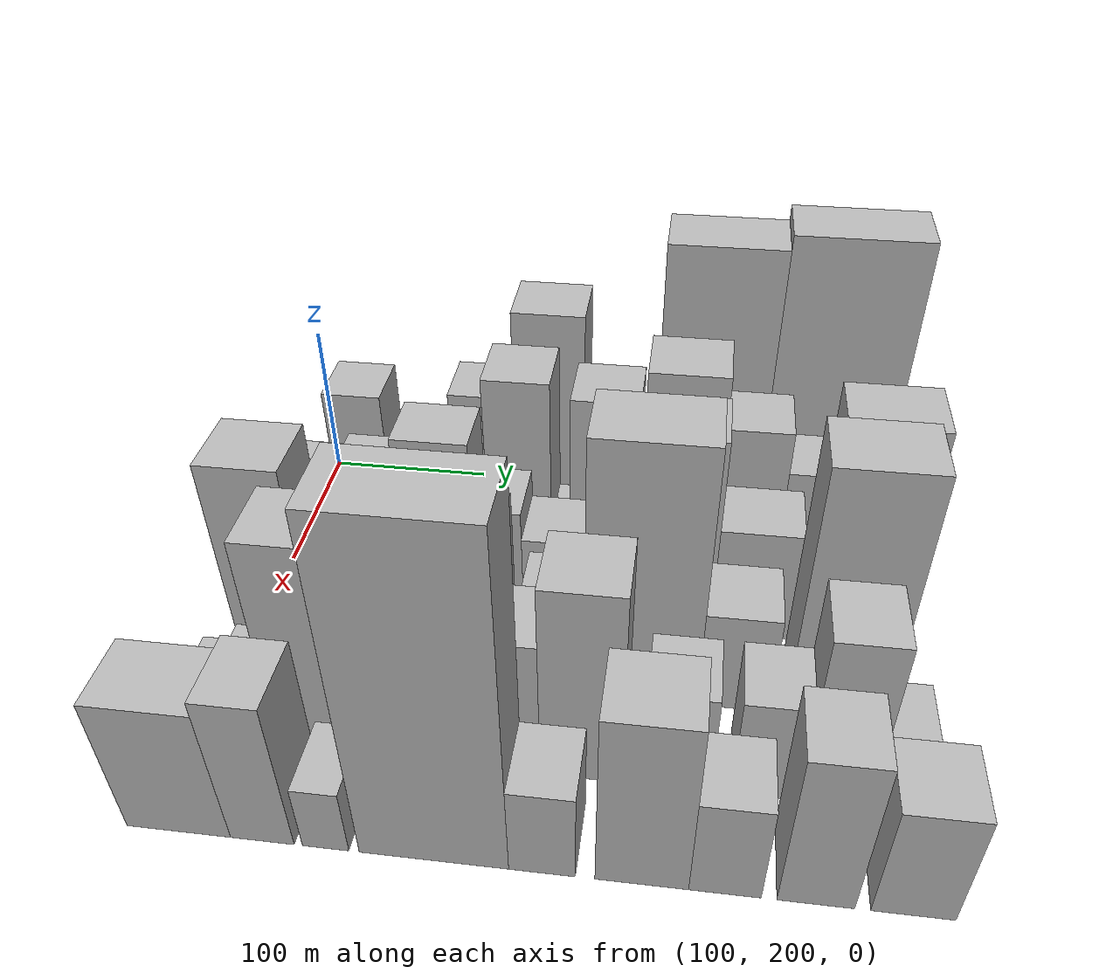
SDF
<sdf version="1.6">
 <world name="default">
  <model name="building_33">
   <static>1</static>
   <pose>100.0000 221.8283 0 0.000000 0.000000 0.000000</pose>
   <link name="link">
    <pose>0 0 34.50 0 0 0</pose>
    <collision name="collision"><geometry><box><size>40.0000 37.4654 69.0000</size></box></geometry></collision>
    <visual name="visual">
     <cast_shadows>0</cast_shadows>
     <geometry><box><size>40.0000 37.4654 69.0000</size></box></geometry>
     <material>
      <script>
       <uri>model://HANNAS_wall/materials/scripts</uri>
       <uri>model://HANNAS_wall/materials/textures</uri>
       <name>vrc/HANNAS_wall</name>
      </script>
     </material>
    </visual>
   </link>
  </model>
  <model name="building_34">
   <static>1</static>
   <pose>100.0000 247.1931 0 0.000000 0.000000 0.000000</pose>
   <link name="link">
    <pose>0 0 13.50 0 0 0</pose>
    <collision name="collision"><geometry><box><size>40.0000 13.2643 27.0000</size></box></geometry></collision>
    <visual name="visual">
     <cast_shadows>0</cast_shadows>
     <geometry><box><size>40.0000 13.2643 27.0000</size></box></geometry>
     <material>
      <script>
       <uri>model://HANNAS_wall/materials/scripts</uri>
       <uri>model://HANNAS_wall/materials/textures</uri>
       <name>vrc/HANNAS_wall</name>
      </script>
     </material>
    </visual>
   </link>
  </model>
  <model name="building_35">
   <static>1</static>
   <pose>100.0000 265.9821 0 0.000000 0.000000 0.000000</pose>
   <link name="link">
    <pose>0 0 7.50 0 0 0</pose>
    <collision name="collision"><geometry><box><size>40.0000 6.3138 15.0000</size></box></geometry></collision>
    <visual name="visual">
     <cast_shadows>0</cast_shadows>
     <geometry><box><size>40.0000 6.3138 15.0000</size></box></geometry>
     <material>
      <script>
       <uri>model://HANNAS_wall/materials/scripts</uri>
       <uri>model://HANNAS_wall/materials/textures</uri>
       <name>vrc/HANNAS_wall</name>
      </script>
     </material>
    </visual>
   </link>
  </model>
  <model name="building_36">
   <static>1</static>
   <pose>100.0000 281.3648 0 0.000000 0.000000 0.000000</pose>
   <link name="link">
    <pose>0 0 7.50 0 0 0</pose>
    <collision name="collision"><geometry><box><size>40.0000 6.4515 15.0000</size></box></geometry></collision>
    <visual name="visual">
     <cast_shadows>0</cast_shadows>
     <geometry><box><size>40.0000 6.4515 15.0000</size></box></geometry>
     <material>
      <script>
       <uri>model://HANNAS_wall/materials/scripts</uri>
       <uri>model://HANNAS_wall/materials/textures</uri>
       <name>vrc/HANNAS_wall</name>
      </script>
     </material>
    </visual>
   </link>
  </model>
  <model name="building_37">
   <static>1</static>
   <pose>100.0000 305.4700 0 0.000000 0.000000 0.000000</pose>
   <link name="link">
    <pose>0 0 37.50 0 0 0</pose>
    <collision name="collision"><geometry><box><size>40.0000 41.7590 75.0000</size></box></geometry></collision>
    <visual name="visual">
     <cast_shadows>0</cast_shadows>
     <geometry><box><size>40.0000 41.7590 75.0000</size></box></geometry>
     <material>
      <script>
       <uri>model://HANNAS_wall/materials/scripts</uri>
       <uri>model://HANNAS_wall/materials/textures</uri>
       <name>vrc/HANNAS_wall</name>
      </script>
     </material>
    </visual>
   </link>
  </model>
  <model name="building_38">
   <static>1</static>
   <pose>100.0000 348.3477 0 0.000000 0.000000 0.000000</pose>
   <link name="link">
    <pose>0 0 67.50 0 0 0</pose>
    <collision name="collision"><geometry><box><size>40.0000 43.9964 135.0000</size></box></geometry></collision>
    <visual name="visual">
     <cast_shadows>0</cast_shadows>
     <geometry><box><size>40.0000 43.9964 135.0000</size></box></geometry>
     <material>
      <script>
       <uri>model://HANNAS_wall/materials/scripts</uri>
       <uri>model://HANNAS_wall/materials/textures</uri>
       <name>vrc/HANNAS_wall</name>
      </script>
     </material>
    </visual>
   </link>
  </model>
  <model name="building_39">
   <static>1</static>
   <pose>100.0000 376.3401 0 0.000000 0.000000 0.000000</pose>
   <link name="link">
    <pose>0 0 13.50 0 0 0</pose>
    <collision name="collision"><geometry><box><size>40.0000 11.9885 27.0000</size></box></geometry></collision>
    <visual name="visual">
     <cast_shadows>0</cast_shadows>
     <geometry><box><size>40.0000 11.9885 27.0000</size></box></geometry>
     <material>
      <script>
       <uri>model://HANNAS_wall/materials/scripts</uri>
       <uri>model://HANNAS_wall/materials/textures</uri>
       <name>vrc/HANNAS_wall</name>
      </script>
     </material>
    </visual>
   </link>
  </model>
  <model name="building_40">
   <static>1</static>
   <pose>100.0000 390.2218 0 0.000000 0.000000 0.000000</pose>
   <link name="link">
    <pose>0 0 15.00 0 0 0</pose>
    <collision name="collision"><geometry><box><size>40.0000 15.7749 30.0000</size></box></geometry></collision>
    <visual name="visual">
     <cast_shadows>0</cast_shadows>
     <geometry><box><size>40.0000 15.7749 30.0000</size></box></geometry>
     <material>
      <script>
       <uri>model://HANNAS_wall/materials/scripts</uri>
       <uri>model://HANNAS_wall/materials/textures</uri>
       <name>vrc/HANNAS_wall</name>
      </script>
     </material>
    </visual>
   </link>
  </model>
  <model name="building_41">
   <static>1</static>
   <pose>100.0000 406.5665 0 0.000000 0.000000 0.000000</pose>
   <link name="link">
    <pose>0 0 15.00 0 0 0</pose>
    <collision name="collision"><geometry><box><size>40.0000 16.9144 30.0000</size></box></geometry></collision>
    <visual name="visual">
     <cast_shadows>0</cast_shadows>
     <geometry><box><size>40.0000 16.9144 30.0000</size></box></geometry>
     <material>
      <script>
       <uri>model://HANNAS_wall/materials/scripts</uri>
       <uri>model://HANNAS_wall/materials/textures</uri>
       <name>vrc/HANNAS_wall</name>
      </script>
     </material>
    </visual>
   </link>
  </model>
  <model name="building_42">
   <static>1</static>
   <pose>100.0000 448.3828 0 0.000000 0.000000 0.000000</pose>
   <link name="link">
    <pose>0 0 91.50 0 0 0</pose>
    <collision name="collision"><geometry><box><size>40.0000 66.7181 183.0000</size></box></geometry></collision>
    <visual name="visual">
     <cast_shadows>0</cast_shadows>
     <geometry><box><size>40.0000 66.7181 183.0000</size></box></geometry>
     <material>
      <script>
       <uri>model://HANNAS_wall/materials/scripts</uri>
       <uri>model://HANNAS_wall/materials/textures</uri>
       <name>vrc/HANNAS_wall</name>
      </script>
     </material>
    </visual>
   </link>
  </model>
  <model name="building_43">
   <static>1</static>
   <pose>100.0000 519.7299 0 0.000000 0.000000 0.000000</pose>
   <link name="link">
    <pose>0 0 96.00 0 0 0</pose>
    <collision name="collision"><geometry><box><size>40.0000 75.9759 192.0000</size></box></geometry></collision>
    <visual name="visual">
     <cast_shadows>0</cast_shadows>
     <geometry><box><size>40.0000 75.9759 192.0000</size></box></geometry>
     <material>
      <script>
       <uri>model://HANNAS_wall/materials/scripts</uri>
       <uri>model://HANNAS_wall/materials/textures</uri>
       <name>vrc/HANNAS_wall</name>
      </script>
     </material>
    </visual>
   </link>
  </model>
  <model name="building_44">
   <static>1</static>
   <pose>100.0000 560.9932 0 0.000000 0.000000 0.000000</pose>
   <link name="link">
    <pose>0 0 7.50 0 0 0</pose>
    <collision name="collision"><geometry><box><size>40.0000 6.5508 15.0000</size></box></geometry></collision>
    <visual name="visual">
     <cast_shadows>0</cast_shadows>
     <geometry><box><size>40.0000 6.5508 15.0000</size></box></geometry>
     <material>
      <script>
       <uri>model://HANNAS_wall/materials/scripts</uri>
       <uri>model://HANNAS_wall/materials/textures</uri>
       <name>vrc/HANNAS_wall</name>
      </script>
     </material>
    </visual>
   </link>
  </model>
  <model name="building_82">
   <static>1</static>
   <pose>155.0000 214.4098 0 0.000000 0.000000 0.000000</pose>
   <link name="link">
    <pose>0 0 16.50 0 0 0</pose>
    <collision name="collision"><geometry><box><size>40.0000 17.7520 33.0000</size></box></geometry></collision>
    <visual name="visual">
     <cast_shadows>0</cast_shadows>
     <geometry><box><size>40.0000 17.7520 33.0000</size></box></geometry>
     <material>
      <script>
       <uri>model://HANNAS_wall/materials/scripts</uri>
       <uri>model://HANNAS_wall/materials/textures</uri>
       <name>vrc/HANNAS_wall</name>
      </script>
     </material>
    </visual>
   </link>
  </model>
  <model name="building_83">
   <static>1</static>
   <pose>155.0000 237.5512 0 0.000000 0.000000 0.000000</pose>
   <link name="link">
    <pose>0 0 25.50 0 0 0</pose>
    <collision name="collision"><geometry><box><size>40.0000 28.5307 51.0000</size></box></geometry></collision>
    <visual name="visual">
     <cast_shadows>0</cast_shadows>
     <geometry><box><size>40.0000 28.5307 51.0000</size></box></geometry>
     <material>
      <script>
       <uri>model://HANNAS_wall/materials/scripts</uri>
       <uri>model://HANNAS_wall/materials/textures</uri>
       <name>vrc/HANNAS_wall</name>
      </script>
     </material>
    </visual>
   </link>
  </model>
  <model name="building_84">
   <static>1</static>
   <pose>155.0000 285.0950 0 0.000000 0.000000 0.000000</pose>
   <link name="link">
    <pose>0 0 39.00 0 0 0</pose>
    <collision name="collision"><geometry><box><size>40.0000 46.5569 78.0000</size></box></geometry></collision>
    <visual name="visual">
     <cast_shadows>0</cast_shadows>
     <geometry><box><size>40.0000 46.5569 78.0000</size></box></geometry>
     <material>
      <script>
       <uri>model://HANNAS_wall/materials/scripts</uri>
       <uri>model://HANNAS_wall/materials/textures</uri>
       <name>vrc/HANNAS_wall</name>
      </script>
     </material>
    </visual>
   </link>
  </model>
  <model name="building_85">
   <static>1</static>
   <pose>155.0000 337.7202 0 0.000000 0.000000 0.000000</pose>
   <link name="link">
    <pose>0 0 61.50 0 0 0</pose>
    <collision name="collision"><geometry><box><size>40.0000 38.6936 123.0000</size></box></geometry></collision>
    <visual name="visual">
     <cast_shadows>0</cast_shadows>
     <geometry><box><size>40.0000 38.6936 123.0000</size></box></geometry>
     <material>
      <script>
       <uri>model://HANNAS_wall/materials/scripts</uri>
       <uri>model://HANNAS_wall/materials/textures</uri>
       <name>vrc/HANNAS_wall</name>
      </script>
     </material>
    </visual>
   </link>
  </model>
  <model name="building_86">
   <static>1</static>
   <pose>155.0000 362.7837 0 0.000000 0.000000 0.000000</pose>
   <link name="link">
    <pose>0 0 12.00 0 0 0</pose>
    <collision name="collision"><geometry><box><size>40.0000 11.4334 24.0000</size></box></geometry></collision>
    <visual name="visual">
     <cast_shadows>0</cast_shadows>
     <geometry><box><size>40.0000 11.4334 24.0000</size></box></geometry>
     <material>
      <script>
       <uri>model://HANNAS_wall/materials/scripts</uri>
       <uri>model://HANNAS_wall/materials/textures</uri>
       <name>vrc/HANNAS_wall</name>
      </script>
     </material>
    </visual>
   </link>
  </model>
  <model name="building_87">
   <static>1</static>
   <pose>155.0000 388.0872 0 0.000000 0.000000 0.000000</pose>
   <link name="link">
    <pose>0 0 57.00 0 0 0</pose>
    <collision name="collision"><geometry><box><size>40.0000 39.1735 114.0000</size></box></geometry></collision>
    <visual name="visual">
     <cast_shadows>0</cast_shadows>
     <geometry><box><size>40.0000 39.1735 114.0000</size></box></geometry>
     <material>
      <script>
       <uri>model://HANNAS_wall/materials/scripts</uri>
       <uri>model://HANNAS_wall/materials/textures</uri>
       <name>vrc/HANNAS_wall</name>
      </script>
     </material>
    </visual>
   </link>
  </model>
  <model name="building_88">
   <static>1</static>
   <pose>155.0000 433.1110 0 0.000000 0.000000 0.000000</pose>
   <link name="link">
    <pose>0 0 67.50 0 0 0</pose>
    <collision name="collision"><geometry><box><size>40.0000 44.8740 135.0000</size></box></geometry></collision>
    <visual name="visual">
     <cast_shadows>0</cast_shadows>
     <geometry><box><size>40.0000 44.8740 135.0000</size></box></geometry>
     <material>
      <script>
       <uri>model://HANNAS_wall/materials/scripts</uri>
       <uri>model://HANNAS_wall/materials/textures</uri>
       <name>vrc/HANNAS_wall</name>
      </script>
     </material>
    </visual>
   </link>
  </model>
  <model name="building_89">
   <static>1</static>
   <pose>155.0000 474.1898 0 0.000000 0.000000 0.000000</pose>
   <link name="link">
    <pose>0 0 51.00 0 0 0</pose>
    <collision name="collision"><geometry><box><size>40.0000 37.2837 102.0000</size></box></geometry></collision>
    <visual name="visual">
     <cast_shadows>0</cast_shadows>
     <geometry><box><size>40.0000 37.2837 102.0000</size></box></geometry>
     <material>
      <script>
       <uri>model://HANNAS_wall/materials/scripts</uri>
       <uri>model://HANNAS_wall/materials/textures</uri>
       <name>vrc/HANNAS_wall</name>
      </script>
     </material>
    </visual>
   </link>
  </model>
  <model name="building_90">
   <static>1</static>
   <pose>155.0000 512.9101 0 0.000000 0.000000 0.000000</pose>
   <link name="link">
    <pose>0 0 37.50 0 0 0</pose>
    <collision name="collision"><geometry><box><size>40.0000 40.1569 75.0000</size></box></geometry></collision>
    <visual name="visual">
     <cast_shadows>0</cast_shadows>
     <geometry><box><size>40.0000 40.1569 75.0000</size></box></geometry>
     <material>
      <script>
       <uri>model://HANNAS_wall/materials/scripts</uri>
       <uri>model://HANNAS_wall/materials/textures</uri>
       <name>vrc/HANNAS_wall</name>
      </script>
     </material>
    </visual>
   </link>
  </model>
  <model name="building_91">
   <static>1</static>
   <pose>155.0000 550.0552 0 0.000000 0.000000 0.000000</pose>
   <link name="link">
    <pose>0 0 15.00 0 0 0</pose>
    <collision name="collision"><geometry><box><size>40.0000 16.1334 30.0000</size></box></geometry></collision>
    <visual name="visual">
     <cast_shadows>0</cast_shadows>
     <geometry><box><size>40.0000 16.1334 30.0000</size></box></geometry>
     <material>
      <script>
       <uri>model://HANNAS_wall/materials/scripts</uri>
       <uri>model://HANNAS_wall/materials/textures</uri>
       <name>vrc/HANNAS_wall</name>
      </script>
     </material>
    </visual>
   </link>
  </model>
  <model name="building_92">
   <static>1</static>
   <pose>155.0000 567.1289 0 0.000000 0.000000 0.000000</pose>
   <link name="link">
    <pose>0 0 16.50 0 0 0</pose>
    <collision name="collision"><geometry><box><size>40.0000 18.0139 33.0000</size></box></geometry></collision>
    <visual name="visual">
     <cast_shadows>0</cast_shadows>
     <geometry><box><size>40.0000 18.0139 33.0000</size></box></geometry>
     <material>
      <script>
       <uri>model://HANNAS_wall/materials/scripts</uri>
       <uri>model://HANNAS_wall/materials/textures</uri>
       <name>vrc/HANNAS_wall</name>
      </script>
     </material>
    </visual>
   </link>
  </model>
  <model name="building_135">
   <static>1</static>
   <pose>210.0000 219.2897 0 0.000000 0.000000 0.000000</pose>
   <link name="link">
    <pose>0 0 42.00 0 0 0</pose>
    <collision name="collision"><geometry><box><size>40.0000 43.0519 84.0000</size></box></geometry></collision>
    <visual name="visual">
     <cast_shadows>0</cast_shadows>
     <geometry><box><size>40.0000 43.0519 84.0000</size></box></geometry>
     <material>
      <script>
       <uri>model://HANNAS_wall/materials/scripts</uri>
       <uri>model://HANNAS_wall/materials/textures</uri>
       <name>vrc/HANNAS_wall</name>
      </script>
     </material>
    </visual>
   </link>
  </model>
  <model name="building_136">
   <static>1</static>
   <pose>210.0000 263.9357 0 0.000000 0.000000 0.000000</pose>
   <link name="link">
    <pose>0 0 34.50 0 0 0</pose>
    <collision name="collision"><geometry><box><size>40.0000 38.2401 69.0000</size></box></geometry></collision>
    <visual name="visual">
     <cast_shadows>0</cast_shadows>
     <geometry><box><size>40.0000 38.2401 69.0000</size></box></geometry>
     <material>
      <script>
       <uri>model://HANNAS_wall/materials/scripts</uri>
       <uri>model://HANNAS_wall/materials/textures</uri>
       <name>vrc/HANNAS_wall</name>
      </script>
     </material>
    </visual>
   </link>
  </model>
  <model name="building_137">
   <static>1</static>
   <pose>210.0000 286.6817 0 0.000000 0.000000 0.000000</pose>
   <link name="link">
    <pose>0 0 7.50 0 0 0</pose>
    <collision name="collision"><geometry><box><size>40.0000 7.2519 15.0000</size></box></geometry></collision>
    <visual name="visual">
     <cast_shadows>0</cast_shadows>
     <geometry><box><size>40.0000 7.2519 15.0000</size></box></geometry>
     <material>
      <script>
       <uri>model://HANNAS_wall/materials/scripts</uri>
       <uri>model://HANNAS_wall/materials/textures</uri>
       <name>vrc/HANNAS_wall</name>
      </script>
     </material>
    </visual>
   </link>
  </model>
  <model name="building_138">
   <static>1</static>
   <pose>210.0000 294.2300 0 0.000000 0.000000 0.000000</pose>
   <link name="link">
    <pose>0 0 9.00 0 0 0</pose>
    <collision name="collision"><geometry><box><size>40.0000 7.8448 18.0000</size></box></geometry></collision>
    <visual name="visual">
     <cast_shadows>0</cast_shadows>
     <geometry><box><size>40.0000 7.8448 18.0000</size></box></geometry>
     <material>
      <script>
       <uri>model://HANNAS_wall/materials/scripts</uri>
       <uri>model://HANNAS_wall/materials/textures</uri>
       <name>vrc/HANNAS_wall</name>
      </script>
     </material>
    </visual>
   </link>
  </model>
  <model name="building_139">
   <static>1</static>
   <pose>210.0000 303.7725 0 0.000000 0.000000 0.000000</pose>
   <link name="link">
    <pose>0 0 13.50 0 0 0</pose>
    <collision name="collision"><geometry><box><size>40.0000 11.2402 27.0000</size></box></geometry></collision>
    <visual name="visual">
     <cast_shadows>0</cast_shadows>
     <geometry><box><size>40.0000 11.2402 27.0000</size></box></geometry>
     <material>
      <script>
       <uri>model://HANNAS_wall/materials/scripts</uri>
       <uri>model://HANNAS_wall/materials/textures</uri>
       <name>vrc/HANNAS_wall</name>
      </script>
     </material>
    </visual>
   </link>
  </model>
  <model name="building_140">
   <static>1</static>
   <pose>210.0000 328.9687 0 0.000000 0.000000 0.000000</pose>
   <link name="link">
    <pose>0 0 37.50 0 0 0</pose>
    <collision name="collision"><geometry><box><size>40.0000 39.1522 75.0000</size></box></geometry></collision>
    <visual name="visual">
     <cast_shadows>0</cast_shadows>
     <geometry><box><size>40.0000 39.1522 75.0000</size></box></geometry>
     <material>
      <script>
       <uri>model://HANNAS_wall/materials/scripts</uri>
       <uri>model://HANNAS_wall/materials/textures</uri>
       <name>vrc/HANNAS_wall</name>
      </script>
     </material>
    </visual>
   </link>
  </model>
  <model name="building_141">
   <static>1</static>
   <pose>210.0000 365.5946 0 0.000000 0.000000 0.000000</pose>
   <link name="link">
    <pose>0 0 28.50 0 0 0</pose>
    <collision name="collision"><geometry><box><size>40.0000 34.0996 57.0000</size></box></geometry></collision>
    <visual name="visual">
     <cast_shadows>0</cast_shadows>
     <geometry><box><size>40.0000 34.0996 57.0000</size></box></geometry>
     <material>
      <script>
       <uri>model://HANNAS_wall/materials/scripts</uri>
       <uri>model://HANNAS_wall/materials/textures</uri>
       <name>vrc/HANNAS_wall</name>
      </script>
     </material>
    </visual>
   </link>
  </model>
  <model name="building_142">
   <static>1</static>
   <pose>210.0000 394.0105 0 0.000000 0.000000 0.000000</pose>
   <link name="link">
    <pose>0 0 19.50 0 0 0</pose>
    <collision name="collision"><geometry><box><size>40.0000 22.7321 39.0000</size></box></geometry></collision>
    <visual name="visual">
     <cast_shadows>0</cast_shadows>
     <geometry><box><size>40.0000 22.7321 39.0000</size></box></geometry>
     <material>
      <script>
       <uri>model://HANNAS_wall/materials/scripts</uri>
       <uri>model://HANNAS_wall/materials/textures</uri>
       <name>vrc/HANNAS_wall</name>
      </script>
     </material>
    </visual>
   </link>
  </model>
  <model name="building_143">
   <static>1</static>
   <pose>210.0000 430.5073 0 0.000000 0.000000 0.000000</pose>
   <link name="link">
    <pose>0 0 66.00 0 0 0</pose>
    <collision name="collision"><geometry><box><size>40.0000 50.2616 132.0000</size></box></geometry></collision>
    <visual name="visual">
     <cast_shadows>0</cast_shadows>
     <geometry><box><size>40.0000 50.2616 132.0000</size></box></geometry>
     <material>
      <script>
       <uri>model://HANNAS_wall/materials/scripts</uri>
       <uri>model://HANNAS_wall/materials/textures</uri>
       <name>vrc/HANNAS_wall</name>
      </script>
     </material>
    </visual>
   </link>
  </model>
  <model name="building_144">
   <static>1</static>
   <pose>210.0000 477.9719 0 0.000000 0.000000 0.000000</pose>
   <link name="link">
    <pose>0 0 37.50 0 0 0</pose>
    <collision name="collision"><geometry><box><size>40.0000 44.6677 75.0000</size></box></geometry></collision>
    <visual name="visual">
     <cast_shadows>0</cast_shadows>
     <geometry><box><size>40.0000 44.6677 75.0000</size></box></geometry>
     <material>
      <script>
       <uri>model://HANNAS_wall/materials/scripts</uri>
       <uri>model://HANNAS_wall/materials/textures</uri>
       <name>vrc/HANNAS_wall</name>
      </script>
     </material>
    </visual>
   </link>
  </model>
  <model name="building_145">
   <static>1</static>
   <pose>210.0000 535.1512 0 0.000000 0.000000 0.000000</pose>
   <link name="link">
    <pose>0 0 73.50 0 0 0</pose>
    <collision name="collision"><geometry><box><size>40.0000 49.6908 147.0000</size></box></geometry></collision>
    <visual name="visual">
     <cast_shadows>0</cast_shadows>
     <geometry><box><size>40.0000 49.6908 147.0000</size></box></geometry>
     <material>
      <script>
       <uri>model://HANNAS_wall/materials/scripts</uri>
       <uri>model://HANNAS_wall/materials/textures</uri>
       <name>vrc/HANNAS_wall</name>
      </script>
     </material>
    </visual>
   </link>
  </model>
  <model name="building_187">
   <static>1</static>
   <pose>265.0000 221.6848 0 0.000000 0.000000 0.000000</pose>
   <link name="link">
    <pose>0 0 67.50 0 0 0</pose>
    <collision name="collision"><geometry><box><size>40.0000 42.2566 135.0000</size></box></geometry></collision>
    <visual name="visual">
     <cast_shadows>0</cast_shadows>
     <geometry><box><size>40.0000 42.2566 135.0000</size></box></geometry>
     <material>
      <script>
       <uri>model://HANNAS_wall/materials/scripts</uri>
       <uri>model://HANNAS_wall/materials/textures</uri>
       <name>vrc/HANNAS_wall</name>
      </script>
     </material>
    </visual>
   </link>
  </model>
  <model name="building_188">
   <static>1</static>
   <pose>265.0000 260.2987 0 0.000000 0.000000 0.000000</pose>
   <link name="link">
    <pose>0 0 34.50 0 0 0</pose>
    <collision name="collision"><geometry><box><size>40.0000 34.9712 69.0000</size></box></geometry></collision>
    <visual name="visual">
     <cast_shadows>0</cast_shadows>
     <geometry><box><size>40.0000 34.9712 69.0000</size></box></geometry>
     <material>
      <script>
       <uri>model://HANNAS_wall/materials/scripts</uri>
       <uri>model://HANNAS_wall/materials/textures</uri>
       <name>vrc/HANNAS_wall</name>
      </script>
     </material>
    </visual>
   </link>
  </model>
  <model name="building_189">
   <static>1</static>
   <pose>265.0000 295.3701 0 0.000000 0.000000 0.000000</pose>
   <link name="link">
    <pose>0 0 48.00 0 0 0</pose>
    <collision name="collision"><geometry><box><size>40.0000 35.1716 96.0000</size></box></geometry></collision>
    <visual name="visual">
     <cast_shadows>0</cast_shadows>
     <geometry><box><size>40.0000 35.1716 96.0000</size></box></geometry>
     <material>
      <script>
       <uri>model://HANNAS_wall/materials/scripts</uri>
       <uri>model://HANNAS_wall/materials/textures</uri>
       <name>vrc/HANNAS_wall</name>
      </script>
     </material>
    </visual>
   </link>
  </model>
  <model name="building_190">
   <static>1</static>
   <pose>265.0000 329.8560 0 0.000000 0.000000 0.000000</pose>
   <link name="link">
    <pose>0 0 51.00 0 0 0</pose>
    <collision name="collision"><geometry><box><size>40.0000 33.8002 102.0000</size></box></geometry></collision>
    <visual name="visual">
     <cast_shadows>0</cast_shadows>
     <geometry><box><size>40.0000 33.8002 102.0000</size></box></geometry>
     <material>
      <script>
       <uri>model://HANNAS_wall/materials/scripts</uri>
       <uri>model://HANNAS_wall/materials/textures</uri>
       <name>vrc/HANNAS_wall</name>
      </script>
     </material>
    </visual>
   </link>
  </model>
  <model name="building_191">
   <static>1</static>
   <pose>265.0000 372.7354 0 0.000000 0.000000 0.000000</pose>
   <link name="link">
    <pose>0 0 31.50 0 0 0</pose>
    <collision name="collision"><geometry><box><size>40.0000 33.9587 63.0000</size></box></geometry></collision>
    <visual name="visual">
     <cast_shadows>0</cast_shadows>
     <geometry><box><size>40.0000 33.9587 63.0000</size></box></geometry>
     <material>
      <script>
       <uri>model://HANNAS_wall/materials/scripts</uri>
       <uri>model://HANNAS_wall/materials/textures</uri>
       <name>vrc/HANNAS_wall</name>
      </script>
     </material>
    </visual>
   </link>
  </model>
  <model name="building_192">
   <static>1</static>
   <pose>265.0000 420.0521 0 0.000000 0.000000 0.000000</pose>
   <link name="link">
    <pose>0 0 84.00 0 0 0</pose>
    <collision name="collision"><geometry><box><size>40.0000 60.6746 168.0000</size></box></geometry></collision>
    <visual name="visual">
     <cast_shadows>0</cast_shadows>
     <geometry><box><size>40.0000 60.6746 168.0000</size></box></geometry>
     <material>
      <script>
       <uri>model://HANNAS_wall/materials/scripts</uri>
       <uri>model://HANNAS_wall/materials/textures</uri>
       <name>vrc/HANNAS_wall</name>
      </script>
     </material>
    </visual>
   </link>
  </model>
  <model name="building_193">
   <static>1</static>
   <pose>265.0000 469.5610 0 0.000000 0.000000 0.000000</pose>
   <link name="link">
    <pose>0 0 33.00 0 0 0</pose>
    <collision name="collision"><geometry><box><size>40.0000 38.3431 66.0000</size></box></geometry></collision>
    <visual name="visual">
     <cast_shadows>0</cast_shadows>
     <geometry><box><size>40.0000 38.3431 66.0000</size></box></geometry>
     <material>
      <script>
       <uri>model://HANNAS_wall/materials/scripts</uri>
       <uri>model://HANNAS_wall/materials/textures</uri>
       <name>vrc/HANNAS_wall</name>
      </script>
     </material>
    </visual>
   </link>
  </model>
  <model name="building_194">
   <static>1</static>
   <pose>265.0000 522.7734 0 0.000000 0.000000 0.000000</pose>
   <link name="link">
    <pose>0 0 81.00 0 0 0</pose>
    <collision name="collision"><geometry><box><size>40.0000 52.0817 162.0000</size></box></geometry></collision>
    <visual name="visual">
     <cast_shadows>0</cast_shadows>
     <geometry><box><size>40.0000 52.0817 162.0000</size></box></geometry>
     <material>
      <script>
       <uri>model://HANNAS_wall/materials/scripts</uri>
       <uri>model://HANNAS_wall/materials/textures</uri>
       <name>vrc/HANNAS_wall</name>
      </script>
     </material>
    </visual>
   </link>
  </model>
  <model name="building_239">
   <static>1</static>
   <pose>320.0000 199.0475 0 0.000000 0.000000 0.000000</pose>
   <link name="link">
    <pose>0 0 16.50 0 0 0</pose>
    <collision name="collision"><geometry><box><size>40.0000 17.5816 33.0000</size></box></geometry></collision>
    <visual name="visual">
     <cast_shadows>0</cast_shadows>
     <geometry><box><size>40.0000 17.5816 33.0000</size></box></geometry>
     <material>
      <script>
       <uri>model://HANNAS_wall/materials/scripts</uri>
       <uri>model://HANNAS_wall/materials/textures</uri>
       <name>vrc/HANNAS_wall</name>
      </script>
     </material>
    </visual>
   </link>
  </model>
  <model name="building_240">
   <static>1</static>
   <pose>320.0000 222.5209 0 0.000000 0.000000 0.000000</pose>
   <link name="link">
    <pose>0 0 22.50 0 0 0</pose>
    <collision name="collision"><geometry><box><size>40.0000 23.3652 45.0000</size></box></geometry></collision>
    <visual name="visual">
     <cast_shadows>0</cast_shadows>
     <geometry><box><size>40.0000 23.3652 45.0000</size></box></geometry>
     <material>
      <script>
       <uri>model://HANNAS_wall/materials/scripts</uri>
       <uri>model://HANNAS_wall/materials/textures</uri>
       <name>vrc/HANNAS_wall</name>
      </script>
     </material>
    </visual>
   </link>
  </model>
  <model name="building_241">
   <static>1</static>
   <pose>320.0000 264.5369 0 0.000000 0.000000 0.000000</pose>
   <link name="link">
    <pose>0 0 69.00 0 0 0</pose>
    <collision name="collision"><geometry><box><size>40.0000 50.6669 138.0000</size></box></geometry></collision>
    <visual name="visual">
     <cast_shadows>0</cast_shadows>
     <geometry><box><size>40.0000 50.6669 138.0000</size></box></geometry>
     <material>
      <script>
       <uri>model://HANNAS_wall/materials/scripts</uri>
       <uri>model://HANNAS_wall/materials/textures</uri>
       <name>vrc/HANNAS_wall</name>
      </script>
     </material>
    </visual>
   </link>
  </model>
  <model name="building_242">
   <static>1</static>
   <pose>320.0000 306.5579 0 0.000000 0.000000 0.000000</pose>
   <link name="link">
    <pose>0 0 28.50 0 0 0</pose>
    <collision name="collision"><geometry><box><size>40.0000 33.3750 57.0000</size></box></geometry></collision>
    <visual name="visual">
     <cast_shadows>0</cast_shadows>
     <geometry><box><size>40.0000 33.3750 57.0000</size></box></geometry>
     <material>
      <script>
       <uri>model://HANNAS_wall/materials/scripts</uri>
       <uri>model://HANNAS_wall/materials/textures</uri>
       <name>vrc/HANNAS_wall</name>
      </script>
     </material>
    </visual>
   </link>
  </model>
  <model name="building_243">
   <static>1</static>
   <pose>320.0000 348.8252 0 0.000000 0.000000 0.000000</pose>
   <link name="link">
    <pose>0 0 45.00 0 0 0</pose>
    <collision name="collision"><geometry><box><size>40.0000 51.1597 90.0000</size></box></geometry></collision>
    <visual name="visual">
     <cast_shadows>0</cast_shadows>
     <geometry><box><size>40.0000 51.1597 90.0000</size></box></geometry>
     <material>
      <script>
       <uri>model://HANNAS_wall/materials/scripts</uri>
       <uri>model://HANNAS_wall/materials/textures</uri>
       <name>vrc/HANNAS_wall</name>
      </script>
     </material>
    </visual>
   </link>
  </model>
  <model name="building_244">
   <static>1</static>
   <pose>320.0000 394.7625 0 0.000000 0.000000 0.000000</pose>
   <link name="link">
    <pose>0 0 63.00 0 0 0</pose>
    <collision name="collision"><geometry><box><size>40.0000 40.7149 126.0000</size></box></geometry></collision>
    <visual name="visual">
     <cast_shadows>0</cast_shadows>
     <geometry><box><size>40.0000 40.7149 126.0000</size></box></geometry>
     <material>
      <script>
       <uri>model://HANNAS_wall/materials/scripts</uri>
       <uri>model://HANNAS_wall/materials/textures</uri>
       <name>vrc/HANNAS_wall</name>
      </script>
     </material>
    </visual>
   </link>
  </model>
  <model name="building_245">
   <static>1</static>
   <pose>320.0000 442.0963 0 0.000000 0.000000 0.000000</pose>
   <link name="link">
    <pose>0 0 33.00 0 0 0</pose>
    <collision name="collision"><geometry><box><size>40.0000 33.9526 66.0000</size></box></geometry></collision>
    <visual name="visual">
     <cast_shadows>0</cast_shadows>
     <geometry><box><size>40.0000 33.9526 66.0000</size></box></geometry>
     <material>
      <script>
       <uri>model://HANNAS_wall/materials/scripts</uri>
       <uri>model://HANNAS_wall/materials/textures</uri>
       <name>vrc/HANNAS_wall</name>
      </script>
     </material>
    </visual>
   </link>
  </model>
  <model name="building_246">
   <static>1</static>
   <pose>320.0000 485.5752 0 0.000000 0.000000 0.000000</pose>
   <link name="link">
    <pose>0 0 33.00 0 0 0</pose>
    <collision name="collision"><geometry><box><size>40.0000 33.0053 66.0000</size></box></geometry></collision>
    <visual name="visual">
     <cast_shadows>0</cast_shadows>
     <geometry><box><size>40.0000 33.0053 66.0000</size></box></geometry>
     <material>
      <script>
       <uri>model://HANNAS_wall/materials/scripts</uri>
       <uri>model://HANNAS_wall/materials/textures</uri>
       <name>vrc/HANNAS_wall</name>
      </script>
     </material>
    </visual>
   </link>
  </model>
  <model name="building_247">
   <static>1</static>
   <pose>320.0000 519.1788 0 0.000000 0.000000 0.000000</pose>
   <link name="link">
    <pose>0 0 55.50 0 0 0</pose>
    <collision name="collision"><geometry><box><size>40.0000 34.2018 111.0000</size></box></geometry></collision>
    <visual name="visual">
     <cast_shadows>0</cast_shadows>
     <geometry><box><size>40.0000 34.2018 111.0000</size></box></geometry>
     <material>
      <script>
       <uri>model://HANNAS_wall/materials/scripts</uri>
       <uri>model://HANNAS_wall/materials/textures</uri>
       <name>vrc/HANNAS_wall</name>
      </script>
     </material>
    </visual>
   </link>
  </model>
  <model name="building_248">
   <static>1</static>
   <pose>320.0000 548.7589 0 0.000000 0.000000 0.000000</pose>
   <link name="link">
    <pose>0 0 24.00 0 0 0</pose>
    <collision name="collision"><geometry><box><size>40.0000 24.9583 48.0000</size></box></geometry></collision>
    <visual name="visual">
     <cast_shadows>0</cast_shadows>
     <geometry><box><size>40.0000 24.9583 48.0000</size></box></geometry>
     <material>
      <script>
       <uri>model://HANNAS_wall/materials/scripts</uri>
       <uri>model://HANNAS_wall/materials/textures</uri>
       <name>vrc/HANNAS_wall</name>
      </script>
     </material>
    </visual>
   </link>
  </model>
  <model name="building_287">
   <static>1</static>
   <pose>375.0000 208.6293 0 0.000000 0.000000 0.000000</pose>
   <link name="link">
    <pose>0 0 43.50 0 0 0</pose>
    <collision name="collision"><geometry><box><size>40.0000 51.5894 87.0000</size></box></geometry></collision>
    <visual name="visual">
     <cast_shadows>0</cast_shadows>
     <geometry><box><size>40.0000 51.5894 87.0000</size></box></geometry>
     <material>
      <script>
       <uri>model://HANNAS_wall/materials/scripts</uri>
       <uri>model://HANNAS_wall/materials/textures</uri>
       <name>vrc/HANNAS_wall</name>
      </script>
     </material>
    </visual>
   </link>
  </model>
  <model name="building_288">
   <static>1</static>
   <pose>375.0000 250.0112 0 0.000000 0.000000 0.000000</pose>
   <link name="link">
    <pose>0 0 48.00 0 0 0</pose>
    <collision name="collision"><geometry><box><size>40.0000 31.1745 96.0000</size></box></geometry></collision>
    <visual name="visual">
     <cast_shadows>0</cast_shadows>
     <geometry><box><size>40.0000 31.1745 96.0000</size></box></geometry>
     <material>
      <script>
       <uri>model://HANNAS_wall/materials/scripts</uri>
       <uri>model://HANNAS_wall/materials/textures</uri>
       <name>vrc/HANNAS_wall</name>
      </script>
     </material>
    </visual>
   </link>
  </model>
  <model name="building_289">
   <static>1</static>
   <pose>375.0000 280.8352 0 0.000000 0.000000 0.000000</pose>
   <link name="link">
    <pose>0 0 21.00 0 0 0</pose>
    <collision name="collision"><geometry><box><size>40.0000 22.4735 42.0000</size></box></geometry></collision>
    <visual name="visual">
     <cast_shadows>0</cast_shadows>
     <geometry><box><size>40.0000 22.4735 42.0000</size></box></geometry>
     <material>
      <script>
       <uri>model://HANNAS_wall/materials/scripts</uri>
       <uri>model://HANNAS_wall/materials/textures</uri>
       <name>vrc/HANNAS_wall</name>
      </script>
     </material>
    </visual>
   </link>
  </model>
  <model name="building_290">
   <static>1</static>
   <pose>375.0000 332.5243 0 0.000000 0.000000 0.000000</pose>
   <link name="link">
    <pose>0 0 103.50 0 0 0</pose>
    <collision name="collision"><geometry><box><size>40.0000 70.9046 207.0000</size></box></geometry></collision>
    <visual name="visual">
     <cast_shadows>0</cast_shadows>
     <geometry><box><size>40.0000 70.9046 207.0000</size></box></geometry>
     <material>
      <script>
       <uri>model://HANNAS_wall/materials/scripts</uri>
       <uri>model://HANNAS_wall/materials/textures</uri>
       <name>vrc/HANNAS_wall</name>
      </script>
     </material>
    </visual>
   </link>
  </model>
  <model name="building_291">
   <static>1</static>
   <pose>375.0000 383.4836 0 0.000000 0.000000 0.000000</pose>
   <link name="link">
    <pose>0 0 28.50 0 0 0</pose>
    <collision name="collision"><geometry><box><size>40.0000 31.0141 57.0000</size></box></geometry></collision>
    <visual name="visual">
     <cast_shadows>0</cast_shadows>
     <geometry><box><size>40.0000 31.0141 57.0000</size></box></geometry>
     <material>
      <script>
       <uri>model://HANNAS_wall/materials/scripts</uri>
       <uri>model://HANNAS_wall/materials/textures</uri>
       <name>vrc/HANNAS_wall</name>
      </script>
     </material>
    </visual>
   </link>
  </model>
  <model name="building_292">
   <static>1</static>
   <pose>375.0000 429.4137 0 0.000000 0.000000 0.000000</pose>
   <link name="link">
    <pose>0 0 55.50 0 0 0</pose>
    <collision name="collision"><geometry><box><size>40.0000 42.8460 111.0000</size></box></geometry></collision>
    <visual name="visual">
     <cast_shadows>0</cast_shadows>
     <geometry><box><size>40.0000 42.8460 111.0000</size></box></geometry>
     <material>
      <script>
       <uri>model://HANNAS_wall/materials/scripts</uri>
       <uri>model://HANNAS_wall/materials/textures</uri>
       <name>vrc/HANNAS_wall</name>
      </script>
     </material>
    </visual>
   </link>
  </model>
  <model name="building_293">
   <static>1</static>
   <pose>375.0000 467.1724 0 0.000000 0.000000 0.000000</pose>
   <link name="link">
    <pose>0 0 31.50 0 0 0</pose>
    <collision name="collision"><geometry><box><size>40.0000 32.6713 63.0000</size></box></geometry></collision>
    <visual name="visual">
     <cast_shadows>0</cast_shadows>
     <geometry><box><size>40.0000 32.6713 63.0000</size></box></geometry>
     <material>
      <script>
       <uri>model://HANNAS_wall/materials/scripts</uri>
       <uri>model://HANNAS_wall/materials/textures</uri>
       <name>vrc/HANNAS_wall</name>
      </script>
     </material>
    </visual>
   </link>
  </model>
  <model name="building_294">
   <static>1</static>
   <pose>375.0000 507.7755 0 0.000000 0.000000 0.000000</pose>
   <link name="link">
    <pose>0 0 49.50 0 0 0</pose>
    <collision name="collision"><geometry><box><size>40.0000 34.5350 99.0000</size></box></geometry></collision>
    <visual name="visual">
     <cast_shadows>0</cast_shadows>
     <geometry><box><size>40.0000 34.5350 99.0000</size></box></geometry>
     <material>
      <script>
       <uri>model://HANNAS_wall/materials/scripts</uri>
       <uri>model://HANNAS_wall/materials/textures</uri>
       <name>vrc/HANNAS_wall</name>
      </script>
     </material>
    </visual>
   </link>
  </model>
  <model name="building_295">
   <static>1</static>
   <pose>375.0000 550.6154 0 0.000000 0.000000 0.000000</pose>
   <link name="link">
    <pose>0 0 36.00 0 0 0</pose>
    <collision name="collision"><geometry><box><size>40.0000 37.1446 72.0000</size></box></geometry></collision>
    <visual name="visual">
     <cast_shadows>0</cast_shadows>
     <geometry><box><size>40.0000 37.1446 72.0000</size></box></geometry>
     <material>
      <script>
       <uri>model://HANNAS_wall/materials/scripts</uri>
       <uri>model://HANNAS_wall/materials/textures</uri>
       <name>vrc/HANNAS_wall</name>
      </script>
     </material>
    </visual>
   </link>
  </model>
 </world>
</sdf>
